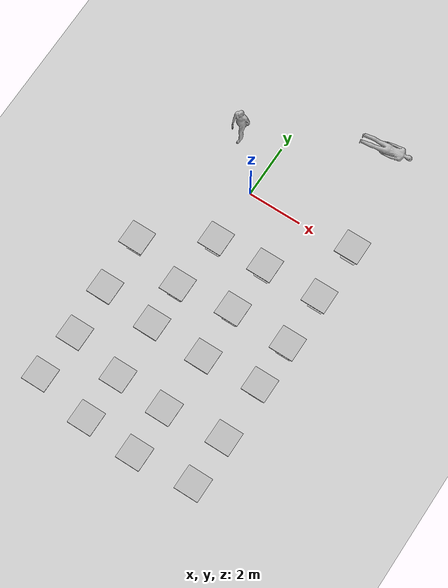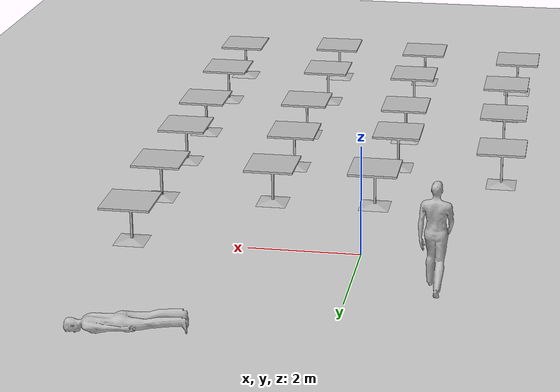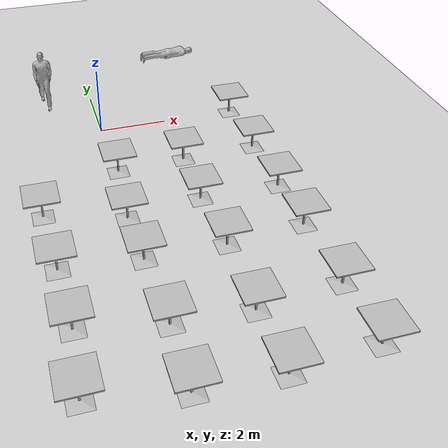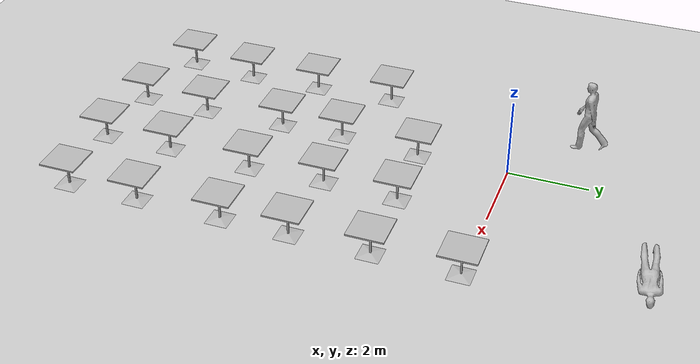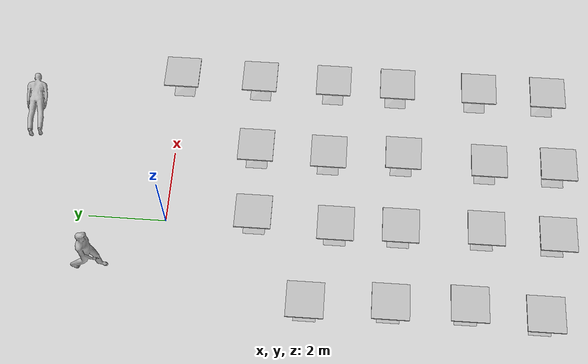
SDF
<sdf version="1.7">
 <world name="default">
  <light name="sun" type="directional">
   <pose>0 0 10 0 -0 0</pose>
   <diffuse>0.8 0.8 0.8 1</diffuse>
   <specular>0.2 0.2 0.2 1</specular>
   <attenuation>
    <range>1000</range>
    <constant>0.9</constant>
    <linear>0.01</linear>
    <quadratic>0.001</quadratic>
   </attenuation>
   <direction>-0.5 0.1 -0.9</direction>
   <spot><inner_angle>0</inner_angle><outer_angle>0</outer_angle><falloff>0</falloff></spot>
  </light>
  <model name="ground_plane">
   <static>1</static>
   <link name="link">
    <collision name="collision">
     <geometry><plane><normal>0 0 1</normal><size>100 100</size></plane></geometry>
     <surface><friction><ode><mu>100</mu><mu2>50</mu2></ode></friction></surface>
    </collision>
    <visual name="visual">
     <cast_shadows>0</cast_shadows>
     <geometry><plane><normal>0 0 1</normal><size>100 100</size></plane></geometry>
     <material>
      <script><uri>file://media/materials/scripts/gazebo.material</uri><name>Gazebo/Grey</name></script>
     </material>
    </visual>
   </link>
  </model>
  <gravity>0 0 -9.8</gravity>
  <magnetic_field>6e-06 2.3e-05 -4.2e-05</magnetic_field>
  <atmosphere type="adiabatic"/>
  <physics type="ode">
   <max_step_size>0.001</max_step_size>
   <real_time_factor>1</real_time_factor>
   <real_time_update_rate>1000</real_time_update_rate>
  </physics>
  <scene><ambient>0.4 0.4 0.4 1</ambient><background>0.7 0.7 0.7 1</background><shadows>1</shadows></scene>
  <audio><device>default</device></audio>
  <spherical_coordinates>
   <surface_model>EARTH_WGS84</surface_model>
   <latitude_deg>0</latitude_deg>
   <longitude_deg>0</longitude_deg>
   <elevation>0</elevation>
   <heading_deg>0</heading_deg>
  </spherical_coordinates>
  <model name="cafe_table">
   <static>1</static>
   <link name="link">
    <collision name="surface">
     <pose>0 0 0.755 0 -0 0</pose>
     <geometry><box><size>0.913 0.913 0.04</size></box></geometry>
    </collision>
    <collision name="column">
     <pose>0 0 0.37 0 -0 0</pose>
     <geometry><box><size>0.042 0.042 0.74</size></box></geometry>
    </collision>
    <collision name="base">
     <pose>0 0 0.02 0 -0 0</pose>
     <geometry><box><size>0.56 0.56 0.04</size></box></geometry>
    </collision>
    <visual name="visual">
     <geometry><mesh><uri>model://cafe_table/meshes/cafe_table.dae</uri></mesh></geometry>
    </visual>
   </link>
   <pose>4.09955 -0.022776 0 0 -0 0</pose>
  </model>
  <model name="cafe_table_clone">
   <static>1</static>
   <link name="link">
    <collision name="surface">
     <pose>0 0 0.755 0 -0 0</pose>
     <geometry><box><size>0.913 0.913 0.04</size></box></geometry>
    </collision>
    <collision name="column">
     <pose>0 0 0.37 0 -0 0</pose>
     <geometry><box><size>0.042 0.042 0.74</size></box></geometry>
    </collision>
    <collision name="base">
     <pose>0 0 0.02 0 -0 0</pose>
     <geometry><box><size>0.56 0.56 0.04</size></box></geometry>
    </collision>
    <visual name="visual">
     <geometry><mesh><uri>model://cafe_table/meshes/cafe_table.dae</uri></mesh></geometry>
    </visual>
   </link>
   <pose>4.09955 -2.1181 0 0 -0 0</pose>
  </model>
  <model name="cafe_table_clone_0">
   <static>1</static>
   <link name="link">
    <collision name="surface">
     <pose>0 0 0.755 0 -0 0</pose>
     <geometry><box><size>0.913 0.913 0.04</size></box></geometry>
    </collision>
    <collision name="column">
     <pose>0 0 0.37 0 -0 0</pose>
     <geometry><box><size>0.042 0.042 0.74</size></box></geometry>
    </collision>
    <collision name="base">
     <pose>0 0 0.02 0 -0 0</pose>
     <geometry><box><size>0.56 0.56 0.04</size></box></geometry>
    </collision>
    <visual name="visual">
     <geometry><mesh><uri>model://cafe_table/meshes/cafe_table.dae</uri></mesh></geometry>
    </visual>
   </link>
   <pose>4.09955 -4.09956 0 0 -0 0</pose>
  </model>
  <model name="cafe_table_clone_1">
   <static>1</static>
   <link name="link">
    <collision name="surface">
     <pose>0 0 0.755 0 -0 0</pose>
     <geometry><box><size>0.913 0.913 0.04</size></box></geometry>
    </collision>
    <collision name="column">
     <pose>0 0 0.37 0 -0 0</pose>
     <geometry><box><size>0.042 0.042 0.74</size></box></geometry>
    </collision>
    <collision name="base">
     <pose>0 0 0.02 0 -0 0</pose>
     <geometry><box><size>0.56 0.56 0.04</size></box></geometry>
    </collision>
    <visual name="visual">
     <geometry><mesh><uri>model://cafe_table/meshes/cafe_table.dae</uri></mesh></geometry>
    </visual>
   </link>
   <pose>4.09955 -5.80771 0 0 -0 0</pose>
  </model>
  <model name="cafe_table_clone_2">
   <static>1</static>
   <link name="link">
    <collision name="surface">
     <pose>0 0 0.755 0 -0 0</pose>
     <geometry><box><size>0.913 0.913 0.04</size></box></geometry>
    </collision>
    <collision name="column">
     <pose>0 0 0.37 0 -0 0</pose>
     <geometry><box><size>0.042 0.042 0.74</size></box></geometry>
    </collision>
    <collision name="base">
     <pose>0 0 0.02 0 -0 0</pose>
     <geometry><box><size>0.56 0.56 0.04</size></box></geometry>
    </collision>
    <visual name="visual">
     <geometry><mesh><uri>model://cafe_table/meshes/cafe_table.dae</uri></mesh></geometry>
    </visual>
   </link>
   <pose>4.09955 -7.97136 0 0 -0 0</pose>
  </model>
  <model name="cafe_table_clone_3">
   <static>1</static>
   <link name="link">
    <collision name="surface">
     <pose>0 0 0.755 0 -0 0</pose>
     <geometry><box><size>0.913 0.913 0.04</size></box></geometry>
    </collision>
    <collision name="column">
     <pose>0 0 0.37 0 -0 0</pose>
     <geometry><box><size>0.042 0.042 0.74</size></box></geometry>
    </collision>
    <collision name="base">
     <pose>0 0 0.02 0 -0 0</pose>
     <geometry><box><size>0.56 0.56 0.04</size></box></geometry>
    </collision>
    <visual name="visual">
     <geometry><mesh><uri>model://cafe_table/meshes/cafe_table.dae</uri></mesh></geometry>
    </visual>
   </link>
   <pose>4.09955 -9.79339 0 0 -0 0</pose>
  </model>
  <model name="cafe_table_clone_4">
   <static>1</static>
   <link name="link">
    <collision name="surface">
     <pose>0 0 0.755 0 -0 0</pose>
     <geometry><box><size>0.913 0.913 0.04</size></box></geometry>
    </collision>
    <collision name="column">
     <pose>0 0 0.37 0 -0 0</pose>
     <geometry><box><size>0.042 0.042 0.74</size></box></geometry>
    </collision>
    <collision name="base">
     <pose>0 0 0.02 0 -0 0</pose>
     <geometry><box><size>0.56 0.56 0.04</size></box></geometry>
    </collision>
    <visual name="visual">
     <geometry><mesh><uri>model://cafe_table/meshes/cafe_table.dae</uri></mesh></geometry>
    </visual>
   </link>
   <pose>1.98145 -2.18643 0 0 -0 0</pose>
  </model>
  <model name="cafe_table_clone_5">
   <static>1</static>
   <link name="link">
    <collision name="surface">
     <pose>0 0 0.755 0 -0 0</pose>
     <geometry><box><size>0.913 0.913 0.04</size></box></geometry>
    </collision>
    <collision name="column">
     <pose>0 0 0.37 0 -0 0</pose>
     <geometry><box><size>0.042 0.042 0.74</size></box></geometry>
    </collision>
    <collision name="base">
     <pose>0 0 0.02 0 -0 0</pose>
     <geometry><box><size>0.56 0.56 0.04</size></box></geometry>
    </collision>
    <visual name="visual">
     <geometry><mesh><uri>model://cafe_table/meshes/cafe_table.dae</uri></mesh></geometry>
    </visual>
   </link>
   <pose>1.91312 -4.07678 0 0 -0 0</pose>
  </model>
  <model name="cafe_table_clone_6">
   <static>1</static>
   <link name="link">
    <collision name="surface">
     <pose>0 0 0.755 0 -0 0</pose>
     <geometry><box><size>0.913 0.913 0.04</size></box></geometry>
    </collision>
    <collision name="column">
     <pose>0 0 0.37 0 -0 0</pose>
     <geometry><box><size>0.042 0.042 0.74</size></box></geometry>
    </collision>
    <collision name="base">
     <pose>0 0 0.02 0 -0 0</pose>
     <geometry><box><size>0.56 0.56 0.04</size></box></geometry>
    </collision>
    <visual name="visual">
     <geometry><mesh><uri>model://cafe_table/meshes/cafe_table.dae</uri></mesh></geometry>
    </visual>
   </link>
   <pose>2 -6 0 0 -0 0</pose>
  </model>
  <model name="cafe_table_clone_7">
   <static>1</static>
   <link name="link">
    <collision name="surface">
     <pose>0 0 0.755 0 -0 0</pose>
     <geometry><box><size>0.913 0.913 0.04</size></box></geometry>
    </collision>
    <collision name="column">
     <pose>0 0 0.37 0 -0 0</pose>
     <geometry><box><size>0.042 0.042 0.74</size></box></geometry>
    </collision>
    <collision name="base">
     <pose>0 0 0.02 0 -0 0</pose>
     <geometry><box><size>0.56 0.56 0.04</size></box></geometry>
    </collision>
    <visual name="visual">
     <geometry><mesh><uri>model://cafe_table/meshes/cafe_table.dae</uri></mesh></geometry>
    </visual>
   </link>
   <pose>1.91312 -8.19911 0 0 -0 0</pose>
  </model>
  <model name="cafe_table_clone_8">
   <static>1</static>
   <link name="link">
    <collision name="surface">
     <pose>0 0 0.755 0 -0 0</pose>
     <geometry><box><size>0.913 0.913 0.04</size></box></geometry>
    </collision>
    <collision name="column">
     <pose>0 0 0.37 0 -0 0</pose>
     <geometry><box><size>0.042 0.042 0.74</size></box></geometry>
    </collision>
    <collision name="base">
     <pose>0 0 0.02 0 -0 0</pose>
     <geometry><box><size>0.56 0.56 0.04</size></box></geometry>
    </collision>
    <visual name="visual">
     <geometry><mesh><uri>model://cafe_table/meshes/cafe_table.dae</uri></mesh></geometry>
    </visual>
   </link>
   <pose>1.9359 -9.97559 0 0 -0 0</pose>
  </model>
  <model name="cafe_table_clone_9">
   <static>1</static>
   <link name="link">
    <collision name="surface">
     <pose>0 0 0.755 0 -0 0</pose>
     <geometry><box><size>0.913 0.913 0.04</size></box></geometry>
    </collision>
    <collision name="column">
     <pose>0 0 0.37 0 -0 0</pose>
     <geometry><box><size>0.042 0.042 0.74</size></box></geometry>
    </collision>
    <collision name="base">
     <pose>0 0 0.02 0 -0 0</pose>
     <geometry><box><size>0.56 0.56 0.04</size></box></geometry>
    </collision>
    <visual name="visual">
     <geometry><mesh><uri>model://cafe_table/meshes/cafe_table.dae</uri></mesh></geometry>
    </visual>
   </link>
   <pose>0.068325 -2.27753 0 0 -0 0</pose>
  </model>
  <model name="cafe_table_clone_10">
   <static>1</static>
   <link name="link">
    <collision name="surface">
     <pose>0 0 0.755 0 -0 0</pose>
     <geometry><box><size>0.913 0.913 0.04</size></box></geometry>
    </collision>
    <collision name="column">
     <pose>0 0 0.37 0 -0 0</pose>
     <geometry><box><size>0.042 0.042 0.74</size></box></geometry>
    </collision>
    <collision name="base">
     <pose>0 0 0.02 0 -0 0</pose>
     <geometry><box><size>0.56 0.56 0.04</size></box></geometry>
    </collision>
    <visual name="visual">
     <geometry><mesh><uri>model://cafe_table/meshes/cafe_table.dae</uri></mesh></geometry>
    </visual>
   </link>
   <pose>-0.113878 -4.35008 0 0 -0 0</pose>
  </model>
  <model name="cafe_table_clone_11">
   <static>1</static>
   <link name="link">
    <collision name="surface">
     <pose>0 0 0.755 0 -0 0</pose>
     <geometry><box><size>0.913 0.913 0.04</size></box></geometry>
    </collision>
    <collision name="column">
     <pose>0 0 0.37 0 -0 0</pose>
     <geometry><box><size>0.042 0.042 0.74</size></box></geometry>
    </collision>
    <collision name="base">
     <pose>0 0 0.02 0 -0 0</pose>
     <geometry><box><size>0.56 0.56 0.04</size></box></geometry>
    </collision>
    <visual name="visual">
     <geometry><mesh><uri>model://cafe_table/meshes/cafe_table.dae</uri></mesh></geometry>
    </visual>
   </link>
   <pose>-0.068328 -5.96713 0 0 -0 0</pose>
  </model>
  <model name="cafe_table_clone_12">
   <static>1</static>
   <link name="link">
    <collision name="surface">
     <pose>0 0 0.755 0 -0 0</pose>
     <geometry><box><size>0.913 0.913 0.04</size></box></geometry>
    </collision>
    <collision name="column">
     <pose>0 0 0.37 0 -0 0</pose>
     <geometry><box><size>0.042 0.042 0.74</size></box></geometry>
    </collision>
    <collision name="base">
     <pose>0 0 0.02 0 -0 0</pose>
     <geometry><box><size>0.56 0.56 0.04</size></box></geometry>
    </collision>
    <visual name="visual">
     <geometry><mesh><uri>model://cafe_table/meshes/cafe_table.dae</uri></mesh></geometry>
    </visual>
   </link>
   <pose>-3e-06 -8.08523 0 0 -0 0</pose>
  </model>
  <model name="cafe_table_clone_13">
   <static>1</static>
   <link name="link">
    <collision name="surface">
     <pose>0 0 0.755 0 -0 0</pose>
     <geometry><box><size>0.913 0.913 0.04</size></box></geometry>
    </collision>
    <collision name="column">
     <pose>0 0 0.37 0 -0 0</pose>
     <geometry><box><size>0.042 0.042 0.74</size></box></geometry>
    </collision>
    <collision name="base">
     <pose>0 0 0.02 0 -0 0</pose>
     <geometry><box><size>0.56 0.56 0.04</size></box></geometry>
    </collision>
    <visual name="visual">
     <geometry><mesh><uri>model://cafe_table/meshes/cafe_table.dae</uri></mesh></geometry>
    </visual>
   </link>
   <pose>-0.045554 -9.86171 0 0 -0 0</pose>
  </model>
  <model name="cafe_table_clone_14">
   <static>1</static>
   <link name="link">
    <collision name="surface">
     <pose>0 0 0.755 0 -0 0</pose>
     <geometry><box><size>0.913 0.913 0.04</size></box></geometry>
    </collision>
    <collision name="column">
     <pose>0 0 0.37 0 -0 0</pose>
     <geometry><box><size>0.042 0.042 0.74</size></box></geometry>
    </collision>
    <collision name="base">
     <pose>0 0 0.02 0 -0 0</pose>
     <geometry><box><size>0.56 0.56 0.04</size></box></geometry>
    </collision>
    <visual name="visual">
     <geometry><mesh><uri>model://cafe_table/meshes/cafe_table.dae</uri></mesh></geometry>
    </visual>
   </link>
   <pose>-2.18643 -3.71238 0 0 -0 0</pose>
  </model>
  <model name="cafe_table_clone_15">
   <static>1</static>
   <link name="link">
    <collision name="surface">
     <pose>0 0 0.755 0 -0 0</pose>
     <geometry><box><size>0.913 0.913 0.04</size></box></geometry>
    </collision>
    <collision name="column">
     <pose>0 0 0.37 0 -0 0</pose>
     <geometry><box><size>0.042 0.042 0.74</size></box></geometry>
    </collision>
    <collision name="base">
     <pose>0 0 0.02 0 -0 0</pose>
     <geometry><box><size>0.56 0.56 0.04</size></box></geometry>
    </collision>
    <visual name="visual">
     <geometry><mesh><uri>model://cafe_table/meshes/cafe_table.dae</uri></mesh></geometry>
    </visual>
   </link>
   <pose>-2.09533 -5.76215 0 0 -0 0</pose>
  </model>
  <model name="cafe_table_clone_16">
   <static>1</static>
   <link name="link">
    <collision name="surface">
     <pose>0 0 0.755 0 -0 0</pose>
     <geometry><box><size>0.913 0.913 0.04</size></box></geometry>
    </collision>
    <collision name="column">
     <pose>0 0 0.37 0 -0 0</pose>
     <geometry><box><size>0.042 0.042 0.74</size></box></geometry>
    </collision>
    <collision name="base">
     <pose>0 0 0.02 0 -0 0</pose>
     <geometry><box><size>0.56 0.56 0.04</size></box></geometry>
    </collision>
    <visual name="visual">
     <geometry><mesh><uri>model://cafe_table/meshes/cafe_table.dae</uri></mesh></geometry>
    </visual>
   </link>
   <pose>-2.02701 -7.6525 0 0 -0 0</pose>
  </model>
  <model name="cafe_table_clone_17">
   <static>1</static>
   <link name="link">
    <collision name="surface">
     <pose>0 0 0.755 0 -0 0</pose>
     <geometry><box><size>0.913 0.913 0.04</size></box></geometry>
    </collision>
    <collision name="column">
     <pose>0 0 0.37 0 -0 0</pose>
     <geometry><box><size>0.042 0.042 0.74</size></box></geometry>
    </collision>
    <collision name="base">
     <pose>0 0 0.02 0 -0 0</pose>
     <geometry><box><size>0.56 0.56 0.04</size></box></geometry>
    </collision>
    <visual name="visual">
     <geometry><mesh><uri>model://cafe_table/meshes/cafe_table.dae</uri></mesh></geometry>
    </visual>
   </link>
   <pose>-2.16366 -9.45176 0 0 -0 0</pose>
  </model>
  <model name="person_walking">
   <link name="link">
    <inertial>
     <pose>0 0 0.95 0 -0 0</pose>
     <mass>80</mass>
     <inertia><ixx>27.82</ixx><ixy>0</ixy><ixz>0</ixz><iyy>24.88</iyy><iyz>0</iyz><izz>4.57</izz></inertia>
    </inertial>
    <collision name="bottom">
     <pose>0 0 0.01 0 -0 0</pose>
     <geometry><box><size>0.35 0.75 0.02</size></box></geometry>
    </collision>
    <collision name="person">
     <pose>0 0 -0.02 0 -0 0</pose>
     <geometry><mesh><uri>model://person_walking/meshes/walking.dae</uri></mesh></geometry>
    </collision>
    <visual name="visual">
     <pose>0 0 -0.02 0 -0 0</pose>
     <geometry><mesh><uri>model://person_walking/meshes/walking.dae</uri></mesh></geometry>
    </visual>
   </link>
   <pose>-1.44518 1.65908 0.189799 2e-06 0 -0.10387</pose>
  </model>
  <model name="person_standing_clone">
   <link name="link">
    <inertial>
     <pose>0 -0.1 0.95 0 -0 0</pose>
     <mass>80</mass>
     <inertia><ixx>24.88</ixx><ixy>0</ixy><ixz>0</ixz><iyy>25.73</iyy><iyz>0</iyz><izz>2.48</izz></inertia>
    </inertial>
    <collision name="bottom">
     <pose>0 -0.1 0.01 0 -0 0</pose>
     <geometry><box><size>0.5 0.35 0.02</size></box></geometry>
    </collision>
    <collision name="person">
     <pose>0 0 0.02 0.04 -0 0</pose>
     <geometry><mesh><uri>model://person_standing/meshes/standing.dae</uri></mesh></geometry>
    </collision>
    <visual name="visual">
     <pose>0 0 0.02 0.04 -0 0</pose>
     <geometry><mesh><uri>model://person_standing/meshes/standing.dae</uri></mesh></geometry>
    </visual>
   </link>
   <pose>2.15427 3.7188 0.465124 1.59083 -4e-06 1.72599</pose>
  </model>
 </world>
</sdf>
